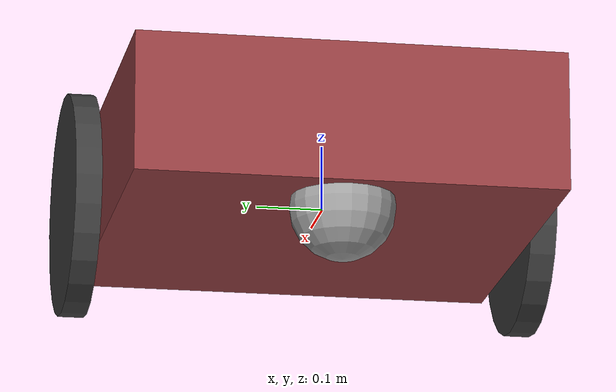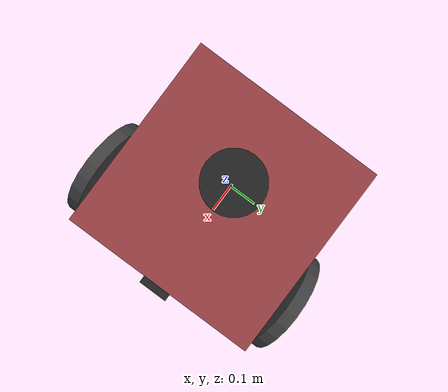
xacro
<?xml version="1.0"?>
<robot name="arapbot" xmlns:xacro="http://www.ros.org/wiki/xacro">

    <xacro:include filename="robot_core.xacro" />

    <xacro:include filename="gazebo_control.xacro" />

    <xacro:include filename="lidar.xacro" />
    <xacro:include filename="depth_camera.xacro" />

</robot>

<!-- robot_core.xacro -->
<robot xmlns:xacro="http://www.ros.org/wiki/xacro">

      <xacro:include filename="inertial_macros.xacro" />
      <!-- Base link -->

      <link name="base_link">

      </link>

      <!-- Chassis link -->

      <joint name="chassis_joint" type="fixed">
        <parent link="base_link"/>
        <child link="chassis"/>
        <origin xyz="-0.1 0 0"/>
      </joint>

      <link name="chassis">
         <visual>
            <origin xyz="0.15 0 0.075"/>
            <geometry>
               <box size="0.65 0.65 0.213"/>
            </geometry>
            <material name="chassis_material">
               <color rgba="0.573 0.239 0.254 1.0"/>
            </material>
         </visual>
         <collision>
            <origin xyz="0.15 0 0.075"/>
            <geometry>
               <box size="0.65 0.65 0.213"/>
            </geometry>
         </collision>
         <xacro:inertial_box mass="0.9" x="0.65" y="0.65" z="0.213">
            <origin xyz="0.15 0 0.075" rpy="0 0 0"/>
         </xacro:inertial_box>
      </link>

      <!-- Left wheel link -->
      <joint name="left_wheel_joint" type="continuous">
        <parent link="base_link"/>
        <child link="left_wheel"/>
        <origin xyz="0.2 0.353 0.048" rpy="-${pi/2} 0 0"/>
        <axis xyz="0 0 1"/>
      </joint>

      <link name="left_wheel">
         <visual>
            <geometry>
               <cylinder radius="0.173" length="0.04"/>
            </geometry>
            <material name="wheel_material">
               <color rgba="0.239 0.239 0.239 1.0"/>
            </material>
         </visual>
         <collision>
            <geometry>
               <cylinder radius="0.173" length="0.04"/>
            </geometry>
         </collision>
         <xacro:inertial_cylinder mass="0.2" length="0.04" radius="0.173">
            <origin xyz="0 0 0" rpy="0 0 0"/>
         </xacro:inertial_cylinder>
      </link>

      <!-- Right wheel link -->
      <joint name="right_wheel_joint" type="continuous">
        <parent link="base_link"/>
        <child link="right_wheel"/>
        <origin xyz="0.2 -0.353 0.048" rpy="${pi/2} 0 0"/>
        <axis xyz="0 0 -1"/>
      </joint>

      <link name="right_wheel">
         <visual>
            <geometry>
               <cylinder radius="0.173" length="0.04"/>
            </geometry>
            <material name="wheel_material">
                <color rgba="0.239 0.239 0.239 1.0"/>
            </material>
         </visual>
         <collision>
            <geometry>
               <cylinder radius="0.173" length="0.04"/>
            </geometry>
         </collision>
            <xacro:inertial_cylinder mass="0.2" length="0.04" radius="0.173">
            <origin xyz="0 0 0" rpy="0 0 0"/>
         </xacro:inertial_cylinder>
      </link>

      <!-- Castor wheel link -->
      <joint name="castor_wheel_joint" type="fixed">
        <parent link="chassis"/>
        <child link="castor_wheel"/>
        <origin xyz="-0.08 0 -0.048"/>
      </joint>

      <link name="castor_wheel">
         <visual>
            <geometry>
               <sphere radius="0.08"/>
            </geometry>
            <material name="castor_material">
                <color rgba="0.62 0.62 0.62 1.0"/>
            </material>
         </visual>
         <collision>
            <geometry>
               <sphere radius="0.08"/>
            </geometry>
         </collision>
         <xacro:inertial_sphere mass="0.15" radius="0.08">
            <origin xyz="0 0 0" rpy="0 0 0"/>
         </xacro:inertial_sphere>
      </link>

      <!-- Gazebo Parameters -->
      <gazebo reference="chassis_link">
         <mu1>1.0</mu1>
         <mu2>1.0</mu2>
      </gazebo>

      <gazebo reference="right_wheel">
         <mu1>1.0</mu1>
         <mu2>1.0</mu2>
      </gazebo>

      <gazebo reference="left_wheel">
         <mu1>1.0</mu1>
         <mu2>1.0</mu2>
      </gazebo>

      <gazebo reference="castor_wheel">
         <mu1>0.000001</mu1>
         <mu2>0.000001</mu2>
      </gazebo>

</robot>

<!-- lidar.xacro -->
<robot xmlns:xacro="http://www.ros.org/wiki/xacro" >
   <joint name="laser_joint" type="fixed">
     <parent link="chassis"/>
     <child link="laser_frame"/>
     <origin xyz="0.1 0 0.175" rpy="0 0 0"/>
   </joint>
   <link name="laser_frame">
      <visual>
         <origin xyz="0 0 0"/>
         <geometry>
            <cylinder length="0.09" radius="0.1"/>
         </geometry>
         <material name="laser_material">
            <color rgba="0.13 0.13 0.13 1.0"/>
         </material>
      </visual>
      <collision>
         <origin xyz="0 0 0"/>
         <geometry>
            <cylinder length="0.04" radius="0.05"/>
         </geometry>
      </collision>
      <xacro:inertial_cylinder mass="0.1" length="0.04" radius="0.05">
         <origin xyz="0 0 0" rpy="0 0 0"/>
      </xacro:inertial_cylinder>
   </link>

   <!-- 2D Lidar New Gazebo Sensor Plugin  -->
   <gazebo reference="laser_frame">
      <sensor name="laser" type="gpu_lidar">
         <pose> 0 0 0 0 0 0 </pose>
         <always_on>true</always_on>
         <visualize>true</visualize>
         <update_rate>10</update_rate>
         <topic>scan</topic>
         <gz_frame_id>laser_frame</gz_frame_id>
         <lidar>
            <scan>
               <horizontal>
               <samples>360</samples>
               <min_angle>-3.14</min_angle>
               <max_angle>3.14</max_angle>
               </horizontal>
            </scan>
            <range>
               <min>0.3</min>
               <max>12</max>
            </range>
         </lidar>
      </sensor>
   </gazebo>
</robot>

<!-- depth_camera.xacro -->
<robot xmlns:xacro="http://www.ros.org/wiki/xacro" >
   <joint name="camera_joint" type="fixed">
     <parent link="chassis"/>
     <child link="camera_link"/>
     <origin xyz="0.5 0 0.08" rpy="0 0 0"/>
   </joint>
   <link name="camera_link">
      <visual>
         <origin xyz="0 0 0"/>
         <geometry>
            <box size="0.040 0.1 0.06"/>
         </geometry>
         <material name="laser_material">
            <color rgba="0.13 0.13 0.13 1.0"/>
         </material>
      </visual>
   </link>

   <joint name="camera_optical_joint" type="fixed">
     <parent link="camera_link"/>
     <child link="camera_link_optical"/>
     <origin xyz="0 0 0" rpy="${-pi/2} 0 ${-pi/2}"/>
   </joint>

   <link name="camera_link_optical"></link>

   <!-- Depth Camera Gazebo Sensor Plugin  -->
   <gazebo reference="camera_link">
    <sensor name="rgbd_camera" type="rgbd_camera">
      <camera>
        <horizontal_fov>1.25</horizontal_fov>
        <image>
          <width>320</width>
          <height>240</height>
        </image>
        <clip>
          <near>0.3</near>
          <far>15</far>
        </clip>
        <optical_frame_id>camera_link</optical_frame_id>
      </camera>
      <always_on>1</always_on>
      <update_rate>20</update_rate>
      <visualize>true</visualize>
      <topic>camera</topic>
      <gz_frame_id>camera_link</gz_frame_id>
    </sensor>
  </gazebo>
</robot>
